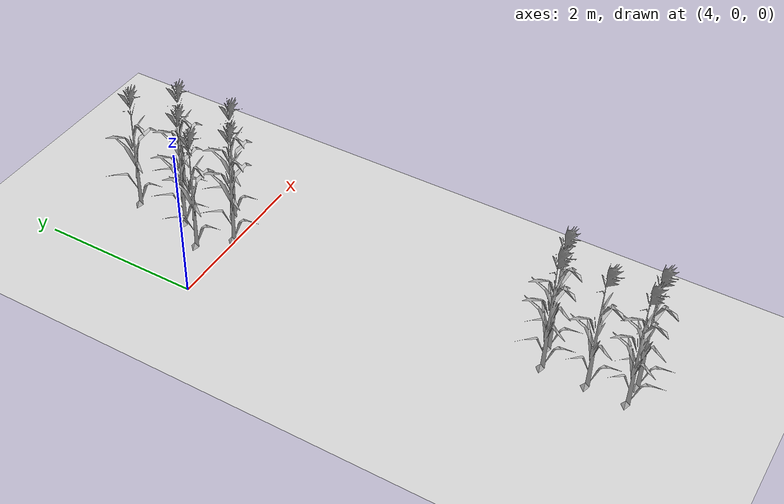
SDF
<sdf version="1.7">
 <world name="farmland_world">
  <model name="ground_plane">
   <static>1</static>
   <link name="link">
    <collision name="collision">
     <geometry><plane><normal>0 0 1</normal><size>40.0 40.0</size></plane></geometry>
     <surface><friction><ode><mu>100</mu><mu2>50</mu2></ode></friction></surface>
    </collision>
    <visual name="visual">
     <cast_shadows>0</cast_shadows>
     <geometry><plane><normal>0 0 1</normal><size>40.0 40.0</size></plane></geometry>
     <material>
      <script><uri>file://media/materials/scripts/gazebo.material</uri><name>Gazebo/Grey</name></script>
     </material>
    </visual>
   </link>
  </model>
  <model name="tree_3_0">
   <static>1</static>
   <link name="link">
    <collision name="collision">
     <geometry><mesh><uri>model://Corn_low_poly/corn.obj</uri><scale>1 1 1</scale></mesh></geometry>
     <surface><friction><ode><mu>100</mu><mu2>50</mu2></ode></friction></surface>
    </collision>
    <visual name="visual">
     <geometry><mesh><uri>model://Corn_low_poly/corn.obj</uri><scale>1 1 1</scale></mesh></geometry>
    </visual>
   </link>
   <pose>4.990437242141914 0.04124213625663867 0 0 0 0</pose>
  </model>
  <model name="tree_3_1">
   <static>1</static>
   <link name="link">
    <collision name="collision">
     <geometry><mesh><uri>model://Corn_low_poly/corn.obj</uri><scale>1 1 1</scale></mesh></geometry>
     <surface><friction><ode><mu>100</mu><mu2>50</mu2></ode></friction></surface>
    </collision>
    <visual name="visual">
     <geometry><mesh><uri>model://Corn_low_poly/corn.obj</uri><scale>1 1 1</scale></mesh></geometry>
    </visual>
   </link>
   <pose>4.670537112308127 0.36484631306738974 0 0 0 0</pose>
  </model>
  <model name="tree_3_42">
   <static>1</static>
   <link name="link">
    <collision name="collision">
     <geometry><mesh><uri>model://Corn_low_poly/corn.obj</uri><scale>1 1 1</scale></mesh></geometry>
     <surface><friction><ode><mu>100</mu><mu2>50</mu2></ode></friction></surface>
    </collision>
    <visual name="visual">
     <geometry><mesh><uri>model://Corn_low_poly/corn.obj</uri><scale>1 1 1</scale></mesh></geometry>
    </visual>
   </link>
   <pose>5.359254945364544 0.28580689529177034 0 0 0 0</pose>
  </model>
  <model name="tree_3_43">
   <static>1</static>
   <link name="link">
    <collision name="collision">
     <geometry><mesh><uri>model://Corn_low_poly/corn.obj</uri><scale>1 1 1</scale></mesh></geometry>
     <surface><friction><ode><mu>100</mu><mu2>50</mu2></ode></friction></surface>
    </collision>
    <visual name="visual">
     <geometry><mesh><uri>model://Corn_low_poly/corn.obj</uri><scale>1 1 1</scale></mesh></geometry>
    </visual>
   </link>
   <pose>4.930782056454369 0.7237352558699733 0 0 0 0</pose>
  </model>
  <model name="tree_3_85">
   <static>1</static>
   <link name="link">
    <collision name="collision">
     <geometry><mesh><uri>model://Corn_low_poly/corn.obj</uri><scale>1 1 1</scale></mesh></geometry>
     <surface><friction><ode><mu>100</mu><mu2>50</mu2></ode></friction></surface>
    </collision>
    <visual name="visual">
     <geometry><mesh><uri>model://Corn_low_poly/corn.obj</uri><scale>1 1 1</scale></mesh></geometry>
    </visual>
   </link>
   <pose>5.3260892955047385 1.0104196187215295 0 0 0 0</pose>
  </model>
  <model name="tree_3_86">
   <static>1</static>
   <link name="link">
    <collision name="collision">
     <geometry><mesh><uri>model://Corn_low_poly/corn.obj</uri><scale>1 1 1</scale></mesh></geometry>
     <surface><friction><ode><mu>100</mu><mu2>50</mu2></ode></friction></surface>
    </collision>
    <visual name="visual">
     <geometry><mesh><uri>model://Corn_low_poly/corn.obj</uri><scale>1 1 1</scale></mesh></geometry>
    </visual>
   </link>
   <pose>4.946942964338077 1.421391342604766 0 0 0 0</pose>
  </model>
  <model name="tree_3_903">
   <static>1</static>
   <link name="link">
    <collision name="collision">
     <geometry><mesh><uri>model://Corn_low_poly/corn.obj</uri><scale>1 1 1</scale></mesh></geometry>
     <surface><friction><ode><mu>100</mu><mu2>50</mu2></ode></friction></surface>
    </collision>
    <visual name="visual">
     <geometry><mesh><uri>model://Corn_low_poly/corn.obj</uri><scale>1 1 1</scale></mesh></geometry>
    </visual>
   </link>
   <pose>5.036901464626528 -4.0290291251651364 0 0 0 0</pose>
  </model>
  <model name="tree_3_904">
   <static>1</static>
   <link name="link">
    <collision name="collision">
     <geometry><mesh><uri>model://Corn_low_poly/corn.obj</uri><scale>1 1 1</scale></mesh></geometry>
     <surface><friction><ode><mu>100</mu><mu2>50</mu2></ode></friction></surface>
    </collision>
    <visual name="visual">
     <geometry><mesh><uri>model://Corn_low_poly/corn.obj</uri><scale>1 1 1</scale></mesh></geometry>
    </visual>
   </link>
   <pose>5.040467540431097 -4.557955193481827 0 0 0 0</pose>
  </model>
  <model name="tree_3_905">
   <static>1</static>
   <link name="link">
    <collision name="collision">
     <geometry><mesh><uri>model://Corn_low_poly/corn.obj</uri><scale>1 1 1</scale></mesh></geometry>
     <surface><friction><ode><mu>100</mu><mu2>50</mu2></ode></friction></surface>
    </collision>
    <visual name="visual">
     <geometry><mesh><uri>model://Corn_low_poly/corn.obj</uri><scale>1 1 1</scale></mesh></geometry>
    </visual>
   </link>
   <pose>5.026285965175087 -5.0312543149425615 0 0 0 0</pose>
  </model>
  <model name="tree_3_929">
   <static>1</static>
   <link name="link">
    <collision name="collision">
     <geometry><mesh><uri>model://Corn_low_poly/corn.obj</uri><scale>1 1 1</scale></mesh></geometry>
     <surface><friction><ode><mu>100</mu><mu2>50</mu2></ode></friction></surface>
    </collision>
    <visual name="visual">
     <geometry><mesh><uri>model://Corn_low_poly/corn.obj</uri><scale>1 1 1</scale></mesh></geometry>
    </visual>
   </link>
   <pose>5.335157406680831 -3.9685011685533573 0 0 0 0</pose>
  </model>
  <model name="tree_3_931">
   <static>1</static>
   <link name="link">
    <collision name="collision">
     <geometry><mesh><uri>model://Corn_low_poly/corn.obj</uri><scale>1 1 1</scale></mesh></geometry>
     <surface><friction><ode><mu>100</mu><mu2>50</mu2></ode></friction></surface>
    </collision>
    <visual name="visual">
     <geometry><mesh><uri>model://Corn_low_poly/corn.obj</uri><scale>1 1 1</scale></mesh></geometry>
    </visual>
   </link>
   <pose>5.312674227938683 -5.02935719634808 0 0 0 0</pose>
  </model>
 </world>
</sdf>
